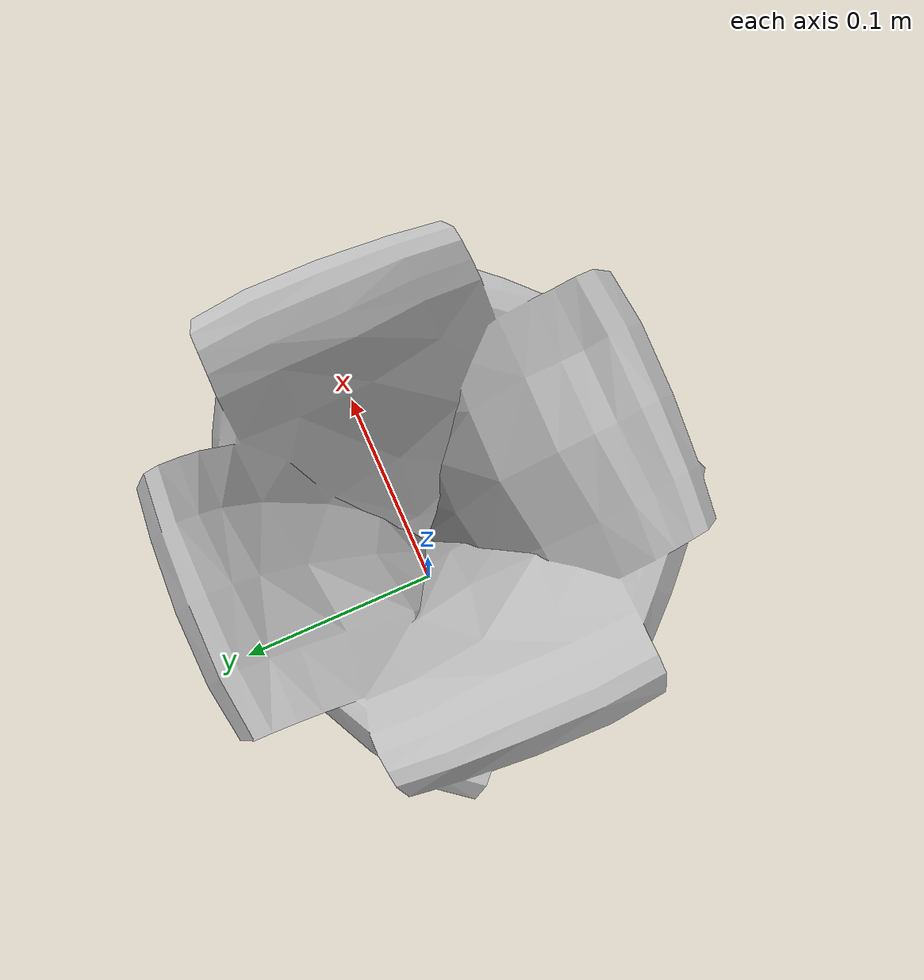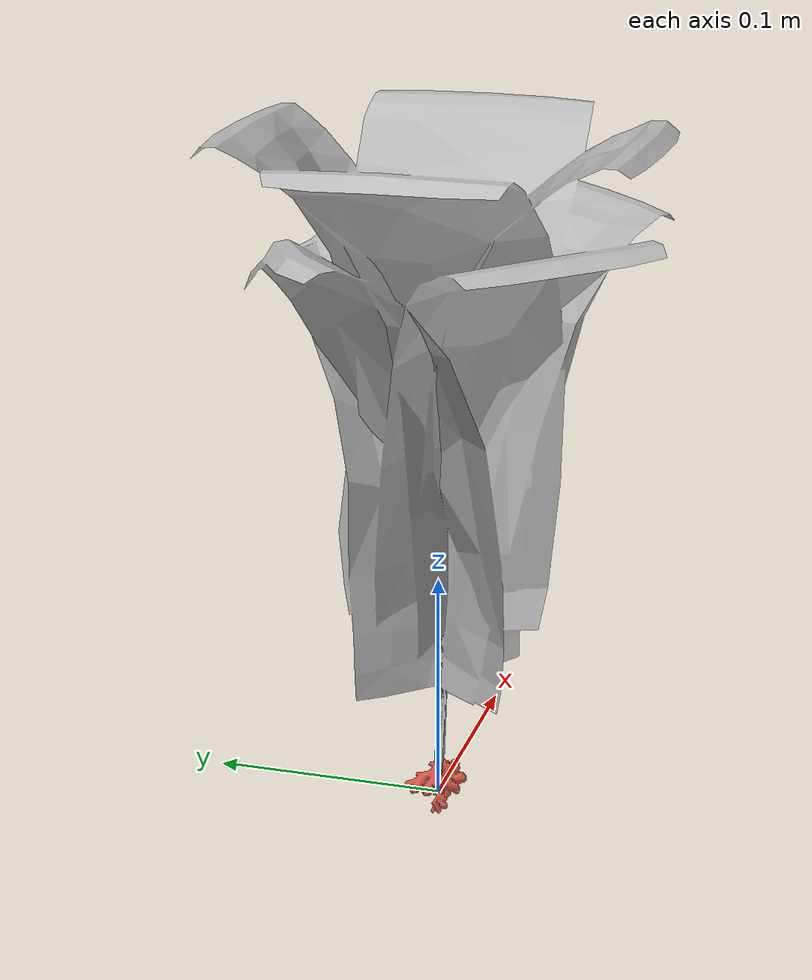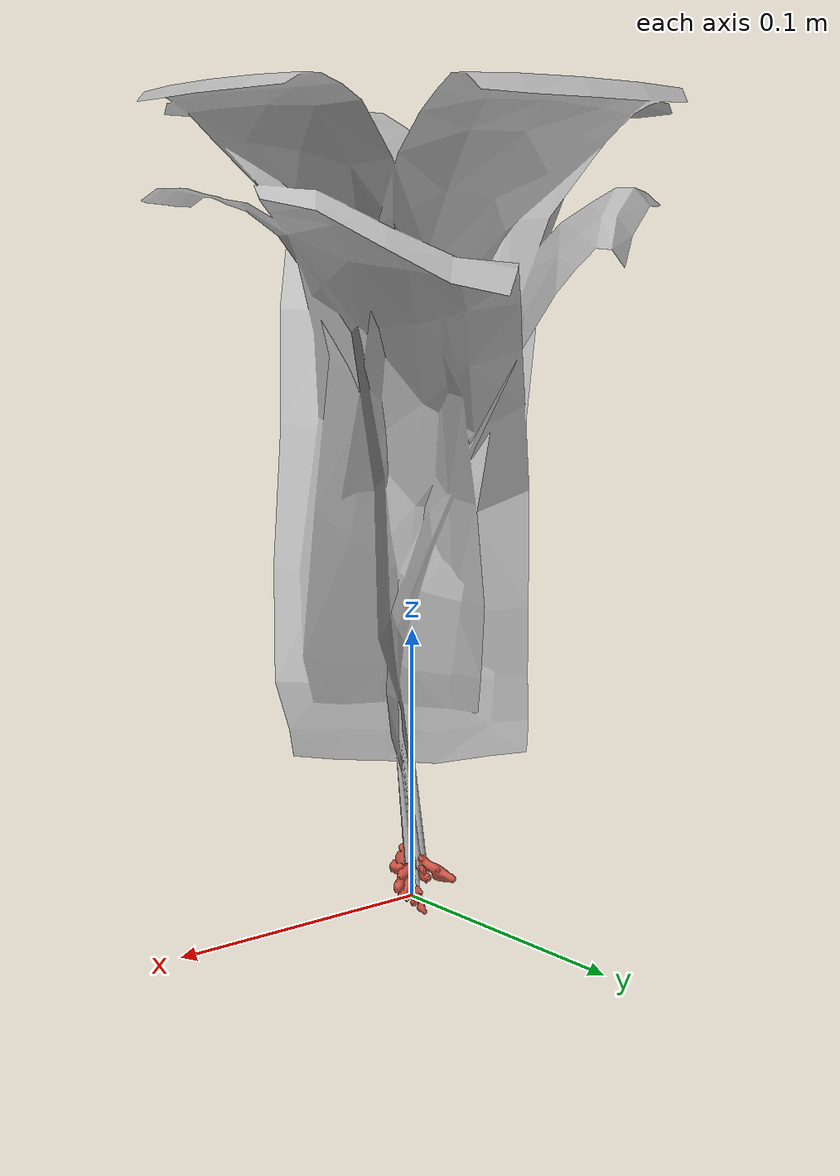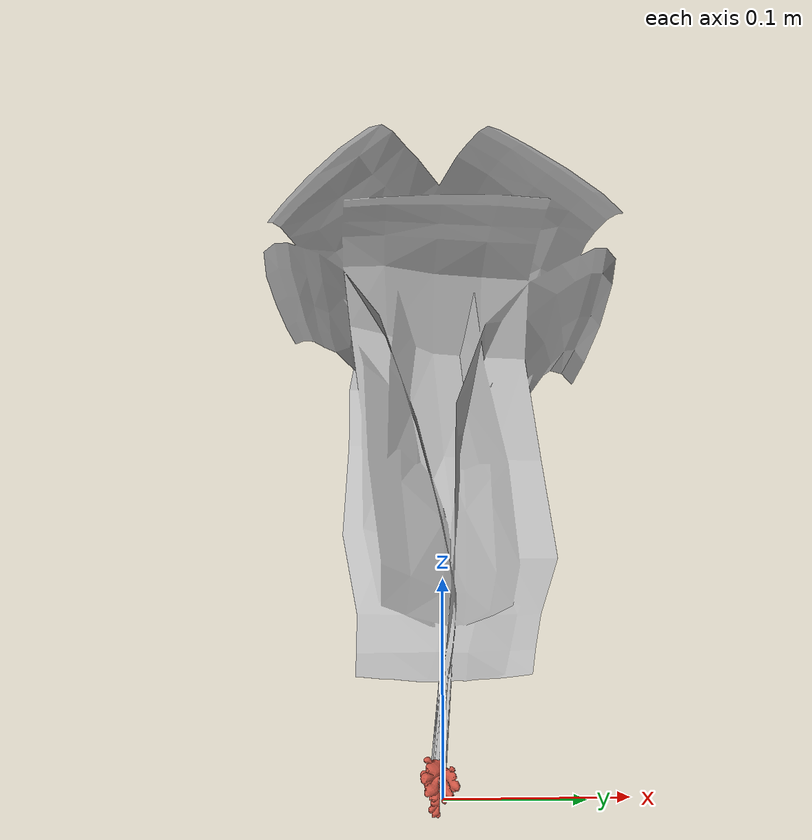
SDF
<?xml version="1.0"?>
<sdf version="1.6">
  <model name="weed">
    <static>false</static>
    <link name="link">
      <inertial>
        <mass>0.1</mass>
        <inertia>
          <ixx>0.0000658333</ixx>
          <ixy>0</ixy>
          <ixz>0</ixz>
          <iyy>0.0000658333</iyy>
          <iyz>0</iyz>
          <izz>0.000125</izz>
        </inertia>
        <pose>0 0 0.005 0 0 0 0 0</pose>
      </inertial>
      <visual name="visual">
        <geometry>
          <mesh>
            <uri>model://weed/meshes/uploads_files_4245317_Manjal+koththu.dae</uri>
            <scale>0.1 0.1 0.1</scale>
          </mesh>
        </geometry>
      </visual>
    </link>
  </model>
</sdf>
